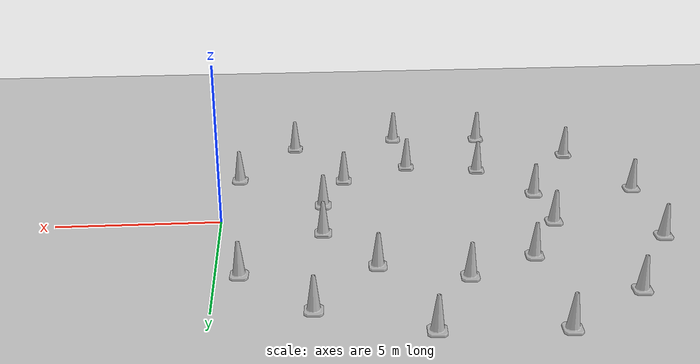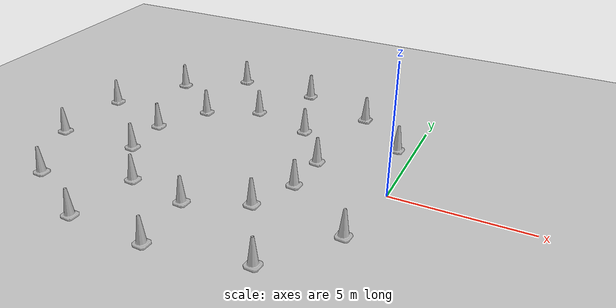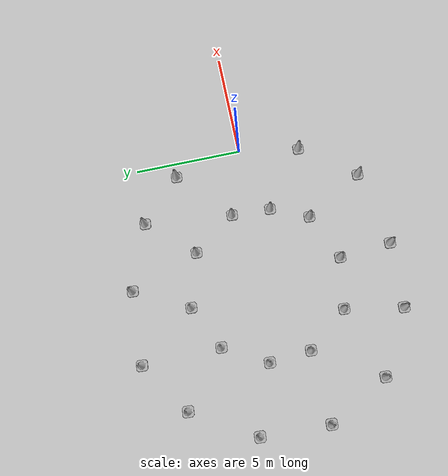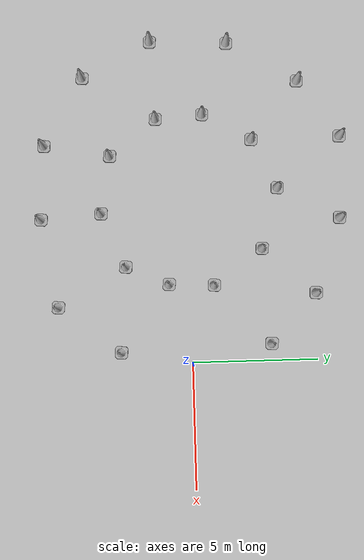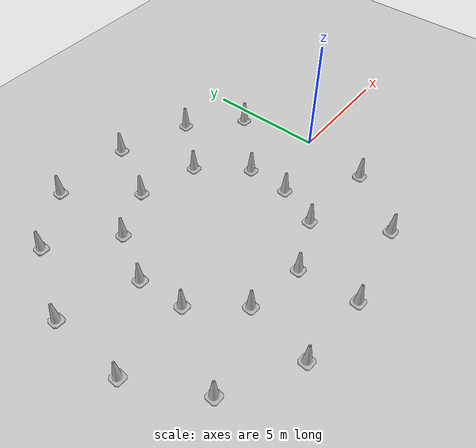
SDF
<sdf version="1.7">
 <world name="default">
  <model name="ground_plane">
   <static>1</static>
   <link name="link">
    <collision name="collision">
     <geometry><plane><normal>0 0 1</normal><size>100 100</size></plane></geometry>
     <surface><friction><ode><mu>100</mu><mu2>50</mu2></ode></friction></surface>
    </collision>
    <visual name="visual">
     <cast_shadows>0</cast_shadows>
     <geometry><plane><normal>0 0 1</normal><size>100 100</size></plane></geometry>
     <material>
      <script><uri>file://media/materials/scripts/gazebo.material</uri><name>Gazebo/Grey</name></script>
     </material>
    </visual>
    <velocity_decay><linear>0</linear><angular>0</angular></velocity_decay>
   </link>
  </model>
  <model name="Construction Cone_0_clone_0_clone_clone_5">
   <link name="link">
    <collision name="collision">
     <geometry>
      <mesh><scale>10 10 10</scale><uri>model://construction_cone/meshes/construction_cone.dae</uri></mesh>
     </geometry>
    </collision>
    <visual name="visual">
     <geometry>
      <mesh><scale>10 10 10</scale><uri>model://construction_cone/meshes/construction_cone.dae</uri></mesh>
     </geometry>
    </visual>
    <velocity_decay><linear>0</linear><angular>0</angular></velocity_decay>
    <inertial>
     <inertia><ixx>1</ixx><ixy>0</ixy><ixz>0</ixz><iyy>1</iyy><iyz>0</iyz><izz>1</izz></inertia>
     <mass>1</mass>
    </inertial>
   </link>
   <pose>-10.1353 0.6569 -0 0 -0 -0.059721</pose>
   <static>0</static>
  </model>
  <model name="Construction Cone_0_clone_3_clone_1">
   <link name="link">
    <collision name="collision">
     <geometry>
      <mesh><scale>10 10 10</scale><uri>model://construction_cone/meshes/construction_cone.dae</uri></mesh>
     </geometry>
    </collision>
    <visual name="visual">
     <geometry>
      <mesh><scale>10 10 10</scale><uri>model://construction_cone/meshes/construction_cone.dae</uri></mesh>
     </geometry>
    </visual>
    <velocity_decay><linear>0</linear><angular>0</angular></velocity_decay>
    <inertial>
     <inertia><ixx>1</ixx><ixy>0</ixy><ixz>0</ixz><iyy>1</iyy><iyz>0</iyz><izz>1</izz></inertia>
     <mass>1</mass>
    </inertial>
   </link>
   <pose>-9.03071 2.64722 -0.000987 4e-06 -2e-06 -0.068007</pose>
   <static>0</static>
  </model>
  <model name="Construction Cone_0_clone_0_clone_clone_5_clone">
   <link name="link">
    <collision name="collision">
     <geometry>
      <mesh><scale>10 10 10</scale><uri>model://construction_cone/meshes/construction_cone.dae</uri></mesh>
     </geometry>
    </collision>
    <visual name="visual">
     <geometry>
      <mesh><scale>10 10 10</scale><uri>model://construction_cone/meshes/construction_cone.dae</uri></mesh>
     </geometry>
    </visual>
    <velocity_decay><linear>0</linear><angular>0</angular></velocity_decay>
    <inertial>
     <inertia><ixx>1</ixx><ixy>0</ixy><ixz>0</ixz><iyy>1</iyy><iyz>0</iyz><izz>1</izz></inertia>
     <mass>1</mass>
    </inertial>
   </link>
   <pose>-9.99171 -1.2666 0 0 0 -0.059721</pose>
   <static>0</static>
  </model>
  <model name="Construction Cone_0_clone_0_clone_clone_5_clone_0">
   <link name="link">
    <collision name="collision">
     <geometry>
      <mesh><scale>10 10 10</scale><uri>model://construction_cone/meshes/construction_cone.dae</uri></mesh>
     </geometry>
    </collision>
    <visual name="visual">
     <geometry>
      <mesh><scale>10 10 10</scale><uri>model://construction_cone/meshes/construction_cone.dae</uri></mesh>
     </geometry>
    </visual>
    <velocity_decay><linear>0</linear><angular>0</angular></velocity_decay>
    <inertial>
     <inertia><ixx>1</ixx><ixy>0</ixy><ixz>0</ixz><iyy>1</iyy><iyz>0</iyz><izz>1</izz></inertia>
     <mass>1</mass>
    </inertial>
   </link>
   <pose>-8.49041 -3.17071 0 0 0 -0.059721</pose>
   <static>0</static>
  </model>
  <model name="Construction Cone_0_clone_0_clone_clone_5_clone_1">
   <link name="link">
    <collision name="collision">
     <geometry>
      <mesh><scale>10 10 10</scale><uri>model://construction_cone/meshes/construction_cone.dae</uri></mesh>
     </geometry>
    </collision>
    <visual name="visual">
     <geometry>
      <mesh><scale>10 10 10</scale><uri>model://construction_cone/meshes/construction_cone.dae</uri></mesh>
     </geometry>
    </visual>
    <velocity_decay><linear>0</linear><angular>0</angular></velocity_decay>
    <inertial>
     <inertia><ixx>1</ixx><ixy>0</ixy><ixz>0</ixz><iyy>1</iyy><iyz>0</iyz><izz>1</izz></inertia>
     <mass>1</mass>
    </inertial>
   </link>
   <pose>-6.11677 -3.56566 0 0 0 -0.059721</pose>
   <static>0</static>
  </model>
  <model name="Construction Cone_0_clone_0_clone_clone_5_clone_2">
   <link name="link">
    <collision name="collision">
     <geometry>
      <mesh><scale>10 10 10</scale><uri>model://construction_cone/meshes/construction_cone.dae</uri></mesh>
     </geometry>
    </collision>
    <visual name="visual">
     <geometry>
      <mesh><scale>10 10 10</scale><uri>model://construction_cone/meshes/construction_cone.dae</uri></mesh>
     </geometry>
    </visual>
    <velocity_decay><linear>0</linear><angular>0</angular></velocity_decay>
    <inertial>
     <inertia><ixx>1</ixx><ixy>0</ixy><ixz>0</ixz><iyy>1</iyy><iyz>0</iyz><izz>1</izz></inertia>
     <mass>1</mass>
    </inertial>
   </link>
   <pose>-6.99309 3.64554 0 0 0 -0.059721</pose>
   <static>0</static>
  </model>
  <model name="Construction Cone_0_clone_0_clone_clone_5_clone_3">
   <link name="link">
    <collision name="collision">
     <geometry>
      <mesh><scale>10 10 10</scale><uri>model://construction_cone/meshes/construction_cone.dae</uri></mesh>
     </geometry>
    </collision>
    <visual name="visual">
     <geometry>
      <mesh><scale>10 10 10</scale><uri>model://construction_cone/meshes/construction_cone.dae</uri></mesh>
     </geometry>
    </visual>
    <velocity_decay><linear>0</linear><angular>0</angular></velocity_decay>
    <inertial>
     <inertia><ixx>1</ixx><ixy>0</ixy><ixz>0</ixz><iyy>1</iyy><iyz>0</iyz><izz>1</izz></inertia>
     <mass>1</mass>
    </inertial>
   </link>
   <pose>-3.90911 -2.6023 0 0 0 -0.059721</pose>
   <static>0</static>
  </model>
  <model name="Construction Cone_0_clone_0_clone_clone_5_clone_4">
   <link name="link">
    <collision name="collision">
     <geometry>
      <mesh><scale>10 10 10</scale><uri>model://construction_cone/meshes/construction_cone.dae</uri></mesh>
     </geometry>
    </collision>
    <visual name="visual">
     <geometry>
      <mesh><scale>10 10 10</scale><uri>model://construction_cone/meshes/construction_cone.dae</uri></mesh>
     </geometry>
    </visual>
    <velocity_decay><linear>0</linear><angular>0</angular></velocity_decay>
    <inertial>
     <inertia><ixx>1</ixx><ixy>0</ixy><ixz>0</ixz><iyy>1</iyy><iyz>0</iyz><izz>1</izz></inertia>
     <mass>1</mass>
    </inertial>
   </link>
   <pose>-4.51728 2.93954 0 0 0 -0.059721</pose>
   <static>0</static>
  </model>
  <model name="Construction Cone_0_clone_0_clone_clone_5_clone_14">
   <link name="link">
    <collision name="collision">
     <geometry>
      <mesh><scale>10 10 10</scale><uri>model://construction_cone/meshes/construction_cone.dae</uri></mesh>
     </geometry>
    </collision>
    <visual name="visual">
     <geometry>
      <mesh><scale>10 10 10</scale><uri>model://construction_cone/meshes/construction_cone.dae</uri></mesh>
     </geometry>
    </visual>
    <velocity_decay><linear>0</linear><angular>0</angular></velocity_decay>
    <inertial>
     <inertia><ixx>1</ixx><ixy>0</ixy><ixz>0</ixz><iyy>1</iyy><iyz>0</iyz><izz>1</izz></inertia>
     <mass>1</mass>
    </inertial>
   </link>
   <pose>-3.15523 -0.86469 0 0 0 -0.059721</pose>
   <static>0</static>
  </model>
  <model name="Construction Cone_0_clone_0_clone_clone_5_clone_13">
   <link name="link">
    <collision name="collision">
     <geometry>
      <mesh><scale>10 10 10</scale><uri>model://construction_cone/meshes/construction_cone.dae</uri></mesh>
     </geometry>
    </collision>
    <visual name="visual">
     <geometry>
      <mesh><scale>10 10 10</scale><uri>model://construction_cone/meshes/construction_cone.dae</uri></mesh>
     </geometry>
    </visual>
    <velocity_decay><linear>0</linear><angular>0</angular></velocity_decay>
    <inertial>
     <inertia><ixx>1</ixx><ixy>0</ixy><ixz>0</ixz><iyy>1</iyy><iyz>0</iyz><izz>1</izz></inertia>
     <mass>1</mass>
    </inertial>
   </link>
   <pose>-3.07618 0.95638 0 0 0 -0.059721</pose>
   <static>0</static>
  </model>
  <model name="Construction Cone_0_clone_0_clone_clone_5_clone_27">
   <link name="link">
    <collision name="collision">
     <geometry>
      <mesh><scale>10 10 10</scale><uri>model://construction_cone/meshes/construction_cone.dae</uri></mesh>
     </geometry>
    </collision>
    <visual name="visual">
     <geometry>
      <mesh><scale>10 10 10</scale><uri>model://construction_cone/meshes/construction_cone.dae</uri></mesh>
     </geometry>
    </visual>
    <velocity_decay><linear>0</linear><angular>0</angular></velocity_decay>
    <inertial>
     <inertia><ixx>1</ixx><ixy>0</ixy><ixz>0</ixz><iyy>1</iyy><iyz>0</iyz><izz>1</izz></inertia>
     <mass>1</mass>
    </inertial>
   </link>
   <pose>-0.471063 -2.84107 0 0 0 -0.059721</pose>
   <static>0</static>
  </model>
  <model name="Construction Cone_0_clone_0_clone_clone_5_clone_28">
   <link name="link">
    <collision name="collision">
     <geometry>
      <mesh><scale>10 10 10</scale><uri>model://construction_cone/meshes/construction_cone.dae</uri></mesh>
     </geometry>
    </collision>
    <visual name="visual">
     <geometry>
      <mesh><scale>10 10 10</scale><uri>model://construction_cone/meshes/construction_cone.dae</uri></mesh>
     </geometry>
    </visual>
    <velocity_decay><linear>0</linear><angular>0</angular></velocity_decay>
    <inertial>
     <inertia><ixx>1</ixx><ixy>0</ixy><ixz>0</ixz><iyy>1</iyy><iyz>0</iyz><izz>1</izz></inertia>
     <mass>1</mass>
    </inertial>
   </link>
   <pose>-2.34393 -5.34619 0 0 0 -0.059721</pose>
   <static>0</static>
  </model>
  <model name="Construction Cone_0_clone_0_clone_clone_5_clone_29">
   <link name="link">
    <collision name="collision">
     <geometry>
      <mesh><scale>10 10 10</scale><uri>model://construction_cone/meshes/construction_cone.dae</uri></mesh>
     </geometry>
    </collision>
    <visual name="visual">
     <geometry>
      <mesh><scale>10 10 10</scale><uri>model://construction_cone/meshes/construction_cone.dae</uri></mesh>
     </geometry>
    </visual>
    <velocity_decay><linear>0</linear><angular>0</angular></velocity_decay>
    <inertial>
     <inertia><ixx>1</ixx><ixy>0</ixy><ixz>0</ixz><iyy>1</iyy><iyz>0</iyz><izz>1</izz></inertia>
     <mass>1</mass>
    </inertial>
   </link>
   <pose>-5.93155 -6.00765 0 0 0 -0.059721</pose>
   <static>0</static>
  </model>
  <model name="Construction Cone_0_clone_0_clone_clone_5_clone_30">
   <link name="link">
    <collision name="collision">
     <geometry>
      <mesh><scale>10 10 10</scale><uri>model://construction_cone/meshes/construction_cone.dae</uri></mesh>
     </geometry>
    </collision>
    <visual name="visual">
     <geometry>
      <mesh><scale>10 10 10</scale><uri>model://construction_cone/meshes/construction_cone.dae</uri></mesh>
     </geometry>
    </visual>
    <velocity_decay><linear>0</linear><angular>0</angular></velocity_decay>
    <inertial>
     <inertia><ixx>1</ixx><ixy>0</ixy><ixz>0</ixz><iyy>1</iyy><iyz>0</iyz><izz>1</izz></inertia>
     <mass>1</mass>
    </inertial>
   </link>
   <pose>-8.98267 -5.86567 0 0 0 -0.059721</pose>
   <static>0</static>
  </model>
  <model name="Construction Cone_0_clone_0_clone_clone_5_clone_31">
   <link name="link">
    <collision name="collision">
     <geometry>
      <mesh><scale>10 10 10</scale><uri>model://construction_cone/meshes/construction_cone.dae</uri></mesh>
     </geometry>
    </collision>
    <visual name="visual">
     <geometry>
      <mesh><scale>10 10 10</scale><uri>model://construction_cone/meshes/construction_cone.dae</uri></mesh>
     </geometry>
    </visual>
    <velocity_decay><linear>0</linear><angular>0</angular></velocity_decay>
    <inertial>
     <inertia><ixx>1</ixx><ixy>0</ixy><ixz>0</ixz><iyy>1</iyy><iyz>0</iyz><izz>1</izz></inertia>
     <mass>1</mass>
    </inertial>
   </link>
   <pose>-11.8125 -4.25301 0 0 0 -0.059721</pose>
   <static>0</static>
  </model>
  <model name="Construction Cone_0_clone_0_clone_clone_5_clone_32">
   <link name="link">
    <collision name="collision">
     <geometry>
      <mesh><scale>10 10 10</scale><uri>model://construction_cone/meshes/construction_cone.dae</uri></mesh>
     </geometry>
    </collision>
    <visual name="visual">
     <geometry>
      <mesh><scale>10 10 10</scale><uri>model://construction_cone/meshes/construction_cone.dae</uri></mesh>
     </geometry>
    </visual>
    <velocity_decay><linear>0</linear><angular>0</angular></velocity_decay>
    <inertial>
     <inertia><ixx>1</ixx><ixy>0</ixy><ixz>0</ixz><iyy>1</iyy><iyz>0</iyz><izz>1</izz></inertia>
     <mass>1</mass>
    </inertial>
   </link>
   <pose>-13.2841 -1.43093 0 0 0 -0.059721</pose>
   <static>0</static>
  </model>
  <model name="Construction Cone_0_clone_0_clone_clone_5_clone_33">
   <link name="link">
    <collision name="collision">
     <geometry>
      <mesh><scale>10 10 10</scale><uri>model://construction_cone/meshes/construction_cone.dae</uri></mesh>
     </geometry>
    </collision>
    <visual name="visual">
     <geometry>
      <mesh><scale>10 10 10</scale><uri>model://construction_cone/meshes/construction_cone.dae</uri></mesh>
     </geometry>
    </visual>
    <velocity_decay><linear>0</linear><angular>0</angular></velocity_decay>
    <inertial>
     <inertia><ixx>1</ixx><ixy>0</ixy><ixz>0</ixz><iyy>1</iyy><iyz>0</iyz><izz>1</izz></inertia>
     <mass>1</mass>
    </inertial>
   </link>
   <pose>-13.1445 1.74383 0 0 0 -0.059721</pose>
   <static>0</static>
  </model>
  <model name="Construction Cone_0_clone_0_clone_clone_5_clone_34">
   <link name="link">
    <collision name="collision">
     <geometry>
      <mesh><scale>10 10 10</scale><uri>model://construction_cone/meshes/construction_cone.dae</uri></mesh>
     </geometry>
    </collision>
    <visual name="visual">
     <geometry>
      <mesh><scale>10 10 10</scale><uri>model://construction_cone/meshes/construction_cone.dae</uri></mesh>
     </geometry>
    </visual>
    <velocity_decay><linear>0</linear><angular>0</angular></velocity_decay>
    <inertial>
     <inertia><ixx>1</ixx><ixy>0</ixy><ixz>0</ixz><iyy>1</iyy><iyz>0</iyz><izz>1</izz></inertia>
     <mass>1</mass>
    </inertial>
   </link>
   <pose>-11.4538 4.61301 0 0 0 -0.059721</pose>
   <static>0</static>
  </model>
  <model name="Construction Cone_0_clone_0_clone_clone_5_clone_35">
   <link name="link">
    <collision name="collision">
     <geometry>
      <mesh><scale>10 10 10</scale><uri>model://construction_cone/meshes/construction_cone.dae</uri></mesh>
     </geometry>
    </collision>
    <visual name="visual">
     <geometry>
      <mesh><scale>10 10 10</scale><uri>model://construction_cone/meshes/construction_cone.dae</uri></mesh>
     </geometry>
    </visual>
    <velocity_decay><linear>0</linear><angular>0</angular></velocity_decay>
    <inertial>
     <inertia><ixx>1</ixx><ixy>0</ixy><ixz>0</ixz><iyy>1</iyy><iyz>0</iyz><izz>1</izz></inertia>
     <mass>1</mass>
    </inertial>
   </link>
   <pose>-9.07767 6.26953 0 0 0 -0.059721</pose>
   <static>0</static>
  </model>
  <model name="Construction Cone_0_clone_0_clone_clone_5_clone_36">
   <link name="link">
    <collision name="collision">
     <geometry>
      <mesh><scale>10 10 10</scale><uri>model://construction_cone/meshes/construction_cone.dae</uri></mesh>
     </geometry>
    </collision>
    <visual name="visual">
     <geometry>
      <mesh><scale>10 10 10</scale><uri>model://construction_cone/meshes/construction_cone.dae</uri></mesh>
     </geometry>
    </visual>
    <velocity_decay><linear>0</linear><angular>0</angular></velocity_decay>
    <inertial>
     <inertia><ixx>1</ixx><ixy>0</ixy><ixz>0</ixz><iyy>1</iyy><iyz>0</iyz><izz>1</izz></inertia>
     <mass>1</mass>
    </inertial>
   </link>
   <pose>-5.69219 6.1416 0 0 0 -0.059721</pose>
   <static>0</static>
  </model>
  <model name="Construction Cone_0_clone_0_clone_clone_5_clone_37">
   <link name="link">
    <collision name="collision">
     <geometry>
      <mesh><scale>10 10 10</scale><uri>model://construction_cone/meshes/construction_cone.dae</uri></mesh>
     </geometry>
    </collision>
    <visual name="visual">
     <geometry>
      <mesh><scale>10 10 10</scale><uri>model://construction_cone/meshes/construction_cone.dae</uri></mesh>
     </geometry>
    </visual>
    <velocity_decay><linear>0</linear><angular>0</angular></velocity_decay>
    <inertial>
     <inertia><ixx>1</ixx><ixy>0</ixy><ixz>0</ixz><iyy>1</iyy><iyz>0</iyz><izz>1</izz></inertia>
     <mass>1</mass>
    </inertial>
   </link>
   <pose>-2.65638 5.04931 0 0 0 -0.059721</pose>
   <static>0</static>
  </model>
  <model name="Construction Cone_0_clone_0_clone_clone_5_clone_38">
   <link name="link">
    <collision name="collision">
     <geometry>
      <mesh><scale>10 10 10</scale><uri>model://construction_cone/meshes/construction_cone.dae</uri></mesh>
     </geometry>
    </collision>
    <visual name="visual">
     <geometry>
      <mesh><scale>10 10 10</scale><uri>model://construction_cone/meshes/construction_cone.dae</uri></mesh>
     </geometry>
    </visual>
    <velocity_decay><linear>0</linear><angular>0</angular></velocity_decay>
    <inertial>
     <inertia><ixx>1</ixx><ixy>0</ixy><ixz>0</ixz><iyy>1</iyy><iyz>0</iyz><izz>1</izz></inertia>
     <mass>1</mass>
    </inertial>
   </link>
   <pose>-0.670462 3.19249 0 0 0 -0.059721</pose>
   <static>0</static>
  </model>
 </world>
</sdf>
